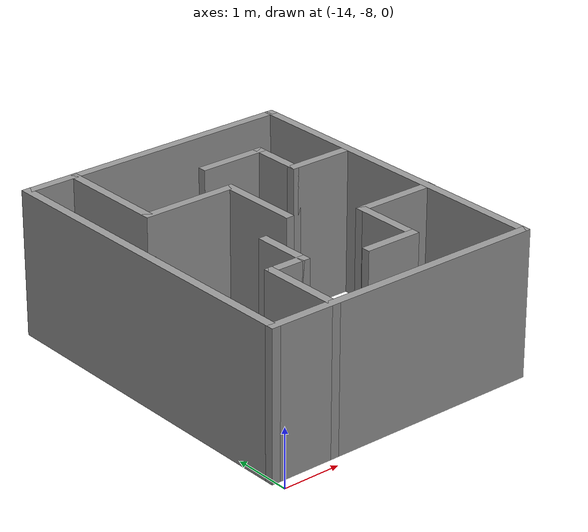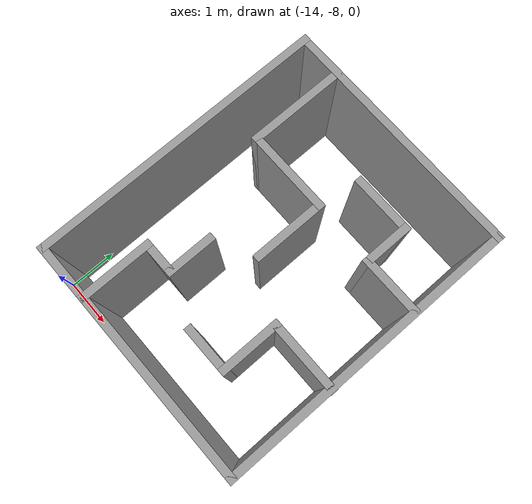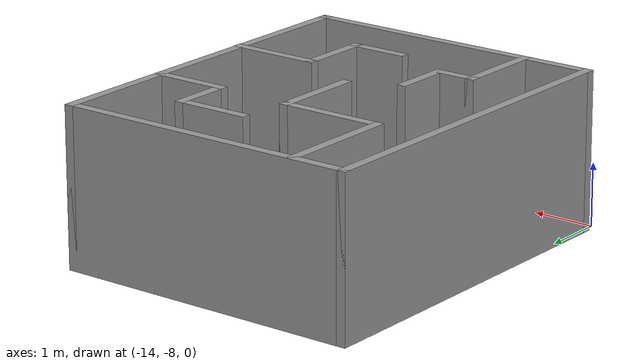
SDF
<?xml version='1.0'?>
<sdf version='1.6'>
  <model name='building1'>
    <pose frame=''>-11.57 -4.815 0 0 -0 0</pose>
    <link name='Wall_0'>
      <collision name='Wall_0_Collision'>
        <geometry>
          <box>
            <size>5 0.15 2.5</size>
          </box>
        </geometry>
        <pose frame=''>0 0 1.25 0 -0 0</pose>
      </collision>
      <visual name='Wall_0_Visual'>
        <pose frame=''>0 0 1.25 0 -0 0</pose>
        <geometry>
          <box>
            <size>5 0.15 2.5</size>
          </box>
        </geometry>
        <material>
          <script>
            <uri>file://media/materials/scripts/gazebo.material</uri>
            <name>Gazebo/Grey</name>
          </script>
          <ambient>1 1 1 1</ambient>
        </material>
        <meta>
          <layer>0</layer>
        </meta>
      </visual>
      <pose frame=''>-0.005 2.925 0 0 -0 0</pose>
    </link>
    <link name='Wall_1'>
      <collision name='Wall_1_Collision'>
        <geometry>
          <box>
            <size>6 0.15 2.5</size>
          </box>
        </geometry>
        <pose frame=''>0 0 1.25 0 -0 0</pose>
      </collision>
      <visual name='Wall_1_Visual'>
        <pose frame=''>0 0 1.25 0 -0 0</pose>
        <geometry>
          <box>
            <size>6 0.15 2.5</size>
          </box>
        </geometry>
        <material>
          <script>
            <uri>file://media/materials/scripts/gazebo.material</uri>
            <name>Gazebo/Grey</name>
          </script>
          <ambient>1 1 1 1</ambient>
        </material>
        <meta>
          <layer>0</layer>
        </meta>
      </visual>
      <pose frame=''>2.42 0 0 0 0 -1.5708</pose>
    </link>
    <link name='Wall_10'>
      <collision name='Wall_10_Collision'>
        <geometry>
          <box>
            <size>1.5 0.15 2.5</size>
          </box>
        </geometry>
        <pose frame=''>0 0 1.25 0 -0 0</pose>
      </collision>
      <visual name='Wall_10_Visual'>
        <pose frame=''>0 0 1.25 0 -0 0</pose>
        <geometry>
          <box>
            <size>1.5 0.15 2.5</size>
          </box>
        </geometry>
        <material>
          <script>
            <uri>file://media/materials/scripts/gazebo.material</uri>
            <name>Gazebo/Grey</name>
          </script>
          <ambient>1 1 1 1</ambient>
        </material>
        <meta>
          <layer>0</layer>
        </meta>
      </visual>
      <pose frame=''>-1.33 -2.25 0 0 -0 1.5708</pose>
    </link>
    <link name='Wall_11'>
      <collision name='Wall_11_Collision'>
        <geometry>
          <box>
            <size>0.75 0.15 2.5</size>
          </box>
        </geometry>
        <pose frame=''>0 0 1.25 0 -0 0</pose>
      </collision>
      <visual name='Wall_11_Visual'>
        <pose frame=''>0 0 1.25 0 -0 0</pose>
        <geometry>
          <box>
            <size>0.75 0.15 2.5</size>
          </box>
        </geometry>
        <material>
          <script>
            <uri>file://media/materials/scripts/gazebo.material</uri>
            <name>Gazebo/Grey</name>
          </script>
          <ambient>1 1 1 1</ambient>
        </material>
        <meta>
          <layer>0</layer>
        </meta>
      </visual>
      <pose frame=''>-1.03 -1.575 0 0 -0 0</pose>
    </link>
    <link name='Wall_12'>
      <collision name='Wall_12_Collision'>
        <geometry>
          <box>
            <size>1 0.15 2.5</size>
          </box>
        </geometry>
        <pose frame=''>0 0 1.25 0 -0 0</pose>
      </collision>
      <visual name='Wall_12_Visual'>
        <pose frame=''>0 0 1.25 0 -0 0</pose>
        <geometry>
          <box>
            <size>1 0.15 2.5</size>
          </box>
        </geometry>
        <material>
          <script>
            <uri>file://media/materials/scripts/gazebo.material</uri>
            <name>Gazebo/Grey</name>
          </script>
          <ambient>1 1 1 1</ambient>
        </material>
        <meta>
          <layer>0</layer>
        </meta>
      </visual>
      <pose frame=''>-0.73 -1.15 0 0 -0 1.5708</pose>
    </link>
    <link name='Wall_17'>
      <collision name='Wall_17_Collision'>
        <geometry>
          <box>
            <size>1.25 0.15 2.5</size>
          </box>
        </geometry>
        <pose frame=''>0 0 1.25 0 -0 0</pose>
      </collision>
      <visual name='Wall_17_Visual'>
        <pose frame=''>0 0 1.25 0 -0 0</pose>
        <geometry>
          <box>
            <size>1.25 0.15 2.5</size>
          </box>
        </geometry>
        <material>
          <script>
            <uri>file://media/materials/scripts/gazebo.material</uri>
            <name>Gazebo/Grey</name>
          </script>
          <ambient>1 1 1 1</ambient>
        </material>
        <meta>
          <layer>0</layer>
        </meta>
      </visual>
      <pose frame=''>1.84 1.005 0 0 -0 3.14159</pose>
    </link>
    <link name='Wall_18'>
      <collision name='Wall_18_Collision'>
        <geometry>
          <box>
            <size>1 0.15 2.5</size>
          </box>
        </geometry>
        <pose frame=''>0 0 1.25 0 -0 0</pose>
      </collision>
      <visual name='Wall_18_Visual'>
        <pose frame=''>0 0 1.25 0 -0 0</pose>
        <geometry>
          <box>
            <size>1 0.15 2.5</size>
          </box>
        </geometry>
        <material>
          <script>
            <uri>file://media/materials/scripts/gazebo.material</uri>
            <name>Gazebo/Grey</name>
          </script>
          <ambient>1 1 1 1</ambient>
        </material>
        <meta>
          <layer>0</layer>
        </meta>
      </visual>
      <pose frame=''>1.29 1.43 0 0 -0 1.5708</pose>
    </link>
    <link name='Wall_2'>
      <collision name='Wall_2_Collision'>
        <geometry>
          <box>
            <size>5 0.15 2.5</size>
          </box>
        </geometry>
        <pose frame=''>0 0 1.25 0 -0 0</pose>
      </collision>
      <visual name='Wall_2_Visual'>
        <pose frame=''>0 0 1.25 0 -0 0</pose>
        <geometry>
          <box>
            <size>5 0.15 2.5</size>
          </box>
        </geometry>
        <material>
          <script>
            <uri>file://media/materials/scripts/gazebo.material</uri>
            <name>Gazebo/Grey</name>
          </script>
          <ambient>1 1 1 1</ambient>
        </material>
        <meta>
          <layer>0</layer>
        </meta>
      </visual>
      <pose frame=''>-0.005 -2.925 0 0 -0 3.14159</pose>
    </link>
    <link name='Wall_20'>
      <collision name='Wall_20_Collision'>
        <geometry>
          <box>
            <size>1.5 0.15 2.5</size>
          </box>
        </geometry>
        <pose frame=''>0 0 1.25 0 -0 0</pose>
      </collision>
      <visual name='Wall_20_Visual'>
        <pose frame=''>0 0 1.25 0 -0 0</pose>
        <geometry>
          <box>
            <size>1.5 0.15 2.5</size>
          </box>
        </geometry>
        <material>
          <script>
            <uri>file://media/materials/scripts/gazebo.material</uri>
            <name>Gazebo/Grey</name>
          </script>
          <ambient>1 1 1 1</ambient>
        </material>
        <meta>
          <layer>0</layer>
        </meta>
      </visual>
      <pose frame=''>1.755 -0.845 0 0 -0 3.14159</pose>
    </link>
    <link name='Wall_21'>
      <collision name='Wall_21_Collision'>
        <geometry>
          <box>
            <size>1.25 0.15 2.5</size>
          </box>
        </geometry>
        <pose frame=''>0 0 1.25 0 -0 0</pose>
      </collision>
      <visual name='Wall_21_Visual'>
        <pose frame=''>0 0 1.25 0 -0 0</pose>
        <geometry>
          <box>
            <size>1.25 0.15 2.5</size>
          </box>
        </geometry>
        <material>
          <script>
            <uri>file://media/materials/scripts/gazebo.material</uri>
            <name>Gazebo/Grey</name>
          </script>
          <ambient>1 1 1 1</ambient>
        </material>
        <meta>
          <layer>0</layer>
        </meta>
      </visual>
      <pose frame=''>1.08 -1.395 0 0 0 -1.5708</pose>
    </link>
    <link name='Wall_22'>
      <collision name='Wall_22_Collision'>
        <geometry>
          <box>
            <size>1 0.15 2.5</size>
          </box>
        </geometry>
        <pose frame=''>0 0 1.25 0 -0 0</pose>
      </collision>
      <visual name='Wall_22_Visual'>
        <pose frame=''>0 0 1.25 0 -0 0</pose>
        <geometry>
          <box>
            <size>1 0.15 2.5</size>
          </box>
        </geometry>
        <material>
          <script>
            <uri>file://media/materials/scripts/gazebo.material</uri>
            <name>Gazebo/Grey</name>
          </script>
          <ambient>1 1 1 1</ambient>
        </material>
        <meta>
          <layer>0</layer>
        </meta>
      </visual>
      <pose frame=''>0.655 -1.945 0 0 -0 3.14159</pose>
    </link>
    <link name='Wall_24'>
      <collision name='Wall_24_Collision'>
        <geometry>
          <box>
            <size>1.25 0.15 2.5</size>
          </box>
        </geometry>
        <pose frame=''>0 0 1.25 0 -0 0</pose>
      </collision>
      <visual name='Wall_24_Visual'>
        <pose frame=''>0 0 1.25 0 -0 0</pose>
        <geometry>
          <box>
            <size>1.25 0.15 2.5</size>
          </box>
        </geometry>
        <material>
          <script>
            <uri>file://media/materials/scripts/gazebo.material</uri>
            <name>Gazebo/Grey</name>
          </script>
          <ambient>1 1 1 1</ambient>
        </material>
        <meta>
          <layer>0</layer>
        </meta>
      </visual>
      <pose frame=''>0.74 1.855 0 0 -0 3.14159</pose>
    </link>
    <link name='Wall_3'>
      <collision name='Wall_3_Collision'>
        <geometry>
          <box>
            <size>6 0.15 2.5</size>
          </box>
        </geometry>
        <pose frame=''>0 0 1.25 0 -0 0</pose>
      </collision>
      <visual name='Wall_3_Visual'>
        <pose frame=''>0 0 1.25 0 -0 0</pose>
        <geometry>
          <box>
            <size>6 0.15 2.5</size>
          </box>
        </geometry>
        <material>
          <script>
            <uri>file://media/materials/scripts/gazebo.material</uri>
            <name>Gazebo/Grey</name>
          </script>
          <ambient>1 1 1 1</ambient>
        </material>
        <meta>
          <layer>0</layer>
        </meta>
      </visual>
      <pose frame=''>-2.43 0 0 0 -0 1.5708</pose>
    </link>
    <link name='Wall_6'>
      <collision name='Wall_6_Collision'>
        <geometry>
          <box>
            <size>2 0.15 2.5</size>
          </box>
        </geometry>
        <pose frame=''>0 0 1.25 0 -0 0</pose>
      </collision>
      <visual name='Wall_6_Visual'>
        <pose frame=''>0 0 1.25 0 -0 0</pose>
        <geometry>
          <box>
            <size>2 0.15 2.5</size>
          </box>
        </geometry>
        <material>
          <script>
            <uri>file://media/materials/scripts/gazebo.material</uri>
            <name>Gazebo/Grey</name>
          </script>
          <ambient>1 1 1 1</ambient>
        </material>
        <meta>
          <layer>0</layer>
        </meta>
      </visual>
      <pose frame=''>-1.56 1.97 0 0 0 -1.5708</pose>
    </link>
    <link name='Wall_7'>
      <collision name='Wall_7_Collision'>
        <geometry>
          <box>
            <size>1.75 0.15 2.5</size>
          </box>
        </geometry>
        <pose frame=''>0 0 1.25 0 -0 0</pose>
      </collision>
      <visual name='Wall_7_Visual'>
        <pose frame=''>0 0 1.25 0 -0 0</pose>
        <geometry>
          <box>
            <size>1.75 0.15 2.5</size>
          </box>
        </geometry>
        <material>
          <script>
            <uri>file://media/materials/scripts/gazebo.material</uri>
            <name>Gazebo/Grey</name>
          </script>
          <ambient>1 1 1 1</ambient>
        </material>
        <meta>
          <layer>0</layer>
        </meta>
      </visual>
      <pose frame=''>-0.76 1.045 0 0 -0 0</pose>
    </link>
    <link name='Wall_8'>
      <collision name='Wall_8_Collision'>
        <geometry>
          <box>
            <size>1.5 0.15 2.5</size>
          </box>
        </geometry>
        <pose frame=''>0 0 1.25 0 -0 0</pose>
      </collision>
      <visual name='Wall_8_Visual'>
        <pose frame=''>0 0 1.25 0 -0 0</pose>
        <geometry>
          <box>
            <size>1.5 0.15 2.5</size>
          </box>
        </geometry>
        <material>
          <script>
            <uri>file://media/materials/scripts/gazebo.material</uri>
            <name>Gazebo/Grey</name>
          </script>
          <ambient>1 1 1 1</ambient>
        </material>
        <meta>
          <layer>0</layer>
        </meta>
      </visual>
      <pose frame=''>0.04 0.37 0 0 0 -1.5708</pose>
    </link>
    <static>1</static>
  </model>
</sdf>
